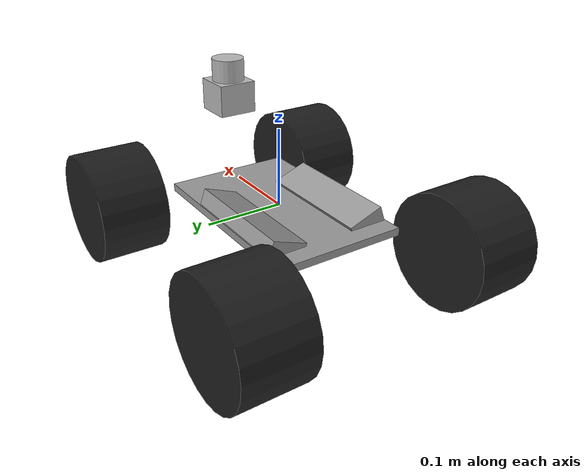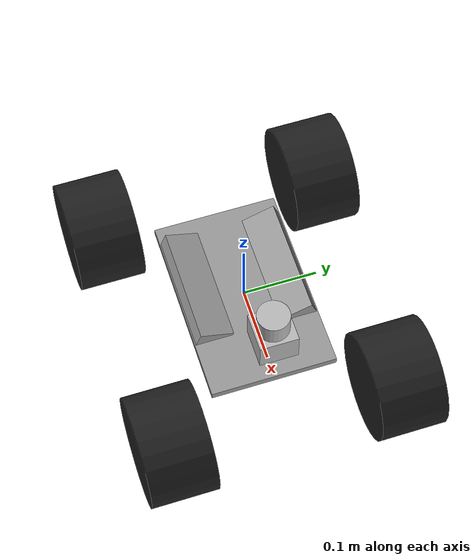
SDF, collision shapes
<?xml version='1.0'?>
<sdf version='1.6'>
  <model name='ackermann_vehicle'>
    <link name='base_link'>
      <pose frame=''>0 0 0 0 -0 0</pose>
      <inertial>
        <pose frame=''>-0.006634 0 -0.003536 0 -0 0</pose>
        <mass>3.795</mass>
        <inertia>
          <ixx>0.0121404</ixx>
          <ixy>0</ixy>
          <ixz>0.000102071</ixz>
          <iyy>0.0201814</iyy>
          <iyz>0</iyz>
          <izz>0.0301018</izz>
        </inertia>
      </inertial>
      <self_collide>0</self_collide>
      <kinematic>0</kinematic>
      <velocity_decay/>
      <visual name='base_link_visual'>
        <pose frame=''>0 0 0 0 -0 0</pose>
        <geometry>
          <box>
            <size>0.01 0.01 0.01</size>
          </box>
        </geometry>
        <material>
          <script>
            <name>Gazebo/Grey</name>
            <uri>file://media/materials/scripts/gazebo.material</uri>
          </script>
          <ambient>0.3 0.3 0.3 1</ambient>
          <diffuse>0.7 0.7 0.7 1</diffuse>
          <specular>0.01 0.01 0.01 1</specular>
          <emissive>0 0 0 1</emissive>
        </material>
        <transparency>0</transparency>
        <cast_shadows>1</cast_shadows>
      </visual>
      <visual name='base_link_fixed_joint_lump__chassis_visual_1'>
        <pose frame=''>0 0 -0.005 0 -0 0</pose>
        <geometry>
          <box>
            <size>0.258 0.168 0.01</size>
          </box>
        </geometry>
        <material>
          <script>
            <name>Gazebo/Grey</name>
            <uri>file://media/materials/scripts/gazebo.material</uri>
          </script>
          <ambient>0.3 0.3 0.3 1</ambient>
          <diffuse>0.7 0.7 0.7 1</diffuse>
          <specular>0.01 0.01 0.01 1</specular>
          <emissive>0 0 0 1</emissive>
        </material>
        <transparency>0</transparency>
        <cast_shadows>1</cast_shadows>
      </visual>
      <visual name='base_link_fixed_joint_lump__left_battery_visual_2'>
        <pose frame=''>-0.025 0.057319 0.00052 0.349066 -0 0</pose>
        <geometry>
          <box>
            <size>0.16 0.047 0.024</size>
          </box>
        </geometry>
        <material>
          <script>
            <name>Gazebo/Blue</name>
            <uri>file://media/materials/scripts/gazebo.material</uri>
          </script>
          <ambient>0 0 1 1</ambient>
          <diffuse>0 0 1 1</diffuse>
          <specular>0.1 0.1 0.1 1</specular>
          <emissive>0 0 0 1</emissive>
        </material>
        <transparency>0</transparency>
        <cast_shadows>1</cast_shadows>
      </visual>
      <visual name='base_link_fixed_joint_lump__right_battery_visual_3'>
        <pose frame=''>-0.025 -0.057319 0.00052 -0.349066 0 0</pose>
        <geometry>
          <box>
            <size>0.16 0.047 0.024</size>
          </box>
        </geometry>
        <material>
          <script>
            <name>Gazebo/Blue</name>
            <uri>file://media/materials/scripts/gazebo.material</uri>
          </script>
          <ambient>0 0 1 1</ambient>
          <diffuse>0 0 1 1</diffuse>
          <specular>0.1 0.1 0.1 1</specular>
          <emissive>0 0 0 1</emissive>
        </material>
        <transparency>0</transparency>
        <cast_shadows>1</cast_shadows>
      </visual>
      <collision name='base_link_fixed_joint_lump__chassis_collision'>
        <laser_retro>0</laser_retro>
        <max_contacts>10</max_contacts>
        <pose frame=''>0 0 -0.005 0 -0 0</pose>
        <geometry>
          <box>
            <size>0.258 0.168 0.01</size>
          </box>
        </geometry>
        <surface>
          <friction>
            <ode>
              <mu>1</mu>
              <mu2>1</mu2>
              <fdir1>0 0 0</fdir1>
              <slip1>0</slip1>
              <slip2>0</slip2>
            </ode>
            <torsional>
              <coefficient>1</coefficient>
              <patch_radius>0</patch_radius>
              <surface_radius>0</surface_radius>
              <use_patch_radius>1</use_patch_radius>
              <ode>
                <slip>0</slip>
              </ode>
            </torsional>
          </friction>
          <bounce>
            <restitution_coefficient>0</restitution_coefficient>
            <threshold>1e+06</threshold>
          </bounce>
          <contact>
            <collide_without_contact>0</collide_without_contact>
            <collide_without_contact_bitmask>1</collide_without_contact_bitmask>
            <collide_bitmask>1</collide_bitmask>
            <ode>
              <soft_cfm>0</soft_cfm>
              <soft_erp>0.2</soft_erp>
              <kp>1e+13</kp>
              <kd>1</kd>
              <max_vel>0.01</max_vel>
              <min_depth>0</min_depth>
            </ode>
            <bullet>
              <split_impulse>1</split_impulse>
              <split_impulse_penetration_threshold>-0.01</split_impulse_penetration_threshold>
              <soft_cfm>0</soft_cfm>
              <soft_erp>0.2</soft_erp>
              <kp>1e+13</kp>
              <kd>1</kd>
            </bullet>
          </contact>
        </surface>
      </collision>
      <collision name='base_link_fixed_joint_lump__left_battery_collision_1'>
        <laser_retro>0</laser_retro>
        <max_contacts>10</max_contacts>
        <pose frame=''>-0.025 0.057319 0.00052 0.349066 -0 0</pose>
        <geometry>
          <box>
            <size>0.16 0.047 0.024</size>
          </box>
        </geometry>
        <surface>
          <friction>
            <ode>
              <mu>1</mu>
              <mu2>1</mu2>
              <fdir1>0 0 0</fdir1>
              <slip1>0</slip1>
              <slip2>0</slip2>
            </ode>
            <torsional>
              <coefficient>1</coefficient>
              <patch_radius>0</patch_radius>
              <surface_radius>0</surface_radius>
              <use_patch_radius>1</use_patch_radius>
              <ode>
                <slip>0</slip>
              </ode>
            </torsional>
          </friction>
          <bounce>
            <restitution_coefficient>0</restitution_coefficient>
            <threshold>1e+06</threshold>
          </bounce>
          <contact>
            <collide_without_contact>0</collide_without_contact>
            <collide_without_contact_bitmask>1</collide_without_contact_bitmask>
            <collide_bitmask>1</collide_bitmask>
            <ode>
              <soft_cfm>0</soft_cfm>
              <soft_erp>0.2</soft_erp>
              <kp>1e+13</kp>
              <kd>1</kd>
              <max_vel>0.01</max_vel>
              <min_depth>0</min_depth>
            </ode>
            <bullet>
              <split_impulse>1</split_impulse>
              <split_impulse_penetration_threshold>-0.01</split_impulse_penetration_threshold>
              <soft_cfm>0</soft_cfm>
              <soft_erp>0.2</soft_erp>
              <kp>1e+13</kp>
              <kd>1</kd>
            </bullet>
          </contact>
        </surface>
      </collision>
      <collision name='base_link_fixed_joint_lump__right_battery_collision_2'>
        <laser_retro>0</laser_retro>
        <max_contacts>10</max_contacts>
        <pose frame=''>-0.025 -0.057319 0.00052 -0.349066 0 0</pose>
        <geometry>
          <box>
            <size>0.16 0.047 0.024</size>
          </box>
        </geometry>
        <surface>
          <friction>
            <ode>
              <mu>1</mu>
              <mu2>1</mu2>
              <fdir1>0 0 0</fdir1>
              <slip1>0</slip1>
              <slip2>0</slip2>
            </ode>
            <torsional>
              <coefficient>1</coefficient>
              <patch_radius>0</patch_radius>
              <surface_radius>0</surface_radius>
              <use_patch_radius>1</use_patch_radius>
              <ode>
                <slip>0</slip>
              </ode>
            </torsional>
          </friction>
          <bounce>
            <restitution_coefficient>0</restitution_coefficient>
            <threshold>1e+06</threshold>
          </bounce>
          <contact>
            <collide_without_contact>0</collide_without_contact>
            <collide_without_contact_bitmask>1</collide_without_contact_bitmask>
            <collide_bitmask>1</collide_bitmask>
            <ode>
              <soft_cfm>0</soft_cfm>
              <soft_erp>0.2</soft_erp>
              <kp>1e+13</kp>
              <kd>1</kd>
              <max_vel>0.01</max_vel>
              <min_depth>0</min_depth>
            </ode>
            <bullet>
              <split_impulse>1</split_impulse>
              <split_impulse_penetration_threshold>-0.01</split_impulse_penetration_threshold>
              <soft_cfm>0</soft_cfm>
              <soft_erp>0.2</soft_erp>
              <kp>1e+13</kp>
              <kd>1</kd>
            </bullet>
          </contact>
        </surface>
      </collision>
    </link>
    <link name='left_front_axle_carrier'>
      <pose frame=''>0.1675 0.1525 -0.0235 0 -0 0</pose>
      <inertial>
        <pose frame=''>0 0 0 0 -0 0</pose>
        <mass>0.001</mass>
        <inertia>
          <ixx>0.001</ixx>
          <ixy>0</ixy>
          <ixz>0</ixz>
          <iyy>0.001</iyy>
          <iyz>0</iyz>
          <izz>0.001</izz>
        </inertia>
      </inertial>
      <self_collide>0</self_collide>
      <kinematic>0</kinematic>
    </link>
    <link name='left_front_wheel'>
      <pose frame=''>0.1675 0.1525 -0.0235 1.5708 -0 0</pose>
      <inertial>
        <pose frame=''>0 0 0 0 -0 0</pose>
        <mass>0.29</mass>
        <inertia>
          <ixx>0.000746466</ixx>
          <ixy>0</ixy>
          <ixz>0</ixz>
          <iyy>0.000746466</iyy>
          <iyz>0</iyz>
          <izz>0.00111094</izz>
        </inertia>
      </inertial>
      <self_collide>0</self_collide>
      <kinematic>0</kinematic>
      <velocity_decay/>
      <visual name='left_front_wheel_visual'>
        <pose frame=''>0 0 0 0 -0 0</pose>
        <geometry>
          <cylinder>
            <length>0.0889</length>
            <radius>0.073025</radius>
          </cylinder>
        </geometry>
        <material>
          <script>
            <name>Gazebo/Black</name>
            <uri>file://media/materials/scripts/gazebo.material</uri>
          </script>
          <ambient>0 0 0 1</ambient>
          <diffuse>0 0 0 1</diffuse>
          <specular>0.1 0.1 0.1 1</specular>
          <emissive>0 0 0 1</emissive>
        </material>
        <transparency>0</transparency>
        <cast_shadows>1</cast_shadows>
      </visual>
      <collision name='left_front_wheel_collision'>
        <laser_retro>0</laser_retro>
        <max_contacts>10</max_contacts>
        <pose frame=''>0 0 0 0 -0 0</pose>
        <geometry>
          <cylinder>
            <radius>0.073025</radius>
            <length>0.0889</length>
          </cylinder>
        </geometry>
        <surface>
          <friction>
            <ode>
              <mu>1</mu>
              <mu2>1</mu2>
              <fdir1>0 0 0</fdir1>
              <slip1>0</slip1>
              <slip2>0</slip2>
            </ode>
            <torsional>
              <coefficient>1</coefficient>
              <patch_radius>0</patch_radius>
              <surface_radius>0</surface_radius>
              <use_patch_radius>1</use_patch_radius>
              <ode>
                <slip>0</slip>
              </ode>
            </torsional>
          </friction>
          <bounce>
            <restitution_coefficient>0</restitution_coefficient>
            <threshold>1e+06</threshold>
          </bounce>
          <contact>
            <collide_without_contact>0</collide_without_contact>
            <collide_without_contact_bitmask>1</collide_without_contact_bitmask>
            <collide_bitmask>1</collide_bitmask>
            <ode>
              <soft_cfm>0</soft_cfm>
              <soft_erp>0.2</soft_erp>
              <kp>1e+13</kp>
              <kd>1</kd>
              <max_vel>0.01</max_vel>
              <min_depth>0</min_depth>
            </ode>
            <bullet>
              <split_impulse>1</split_impulse>
              <split_impulse_penetration_threshold>-0.01</split_impulse_penetration_threshold>
              <soft_cfm>0</soft_cfm>
              <soft_erp>0.2</soft_erp>
              <kp>1e+13</kp>
              <kd>1</kd>
            </bullet>
          </contact>
        </surface>
      </collision>
    </link>
    <link name='left_rear_axle_carrier'>
      <pose frame=''>-0.1675 0.1525 -0.0235 0 -0 0</pose>
      <inertial>
        <pose frame=''>0 0 0 0 -0 0</pose>
        <mass>0.001</mass>
        <inertia>
          <ixx>0.001</ixx>
          <ixy>0</ixy>
          <ixz>0</ixz>
          <iyy>0.001</iyy>
          <iyz>0</iyz>
          <izz>0.001</izz>
        </inertia>
      </inertial>
      <self_collide>0</self_collide>
      <kinematic>0</kinematic>
    </link>
    <link name='left_rear_wheel'>
      <pose frame=''>-0.1675 0.1525 -0.0235 1.5708 -0 0</pose>
      <inertial>
        <pose frame=''>0 0 0 0 -0 0</pose>
        <mass>0.29</mass>
        <inertia>
          <ixx>0.000746466</ixx>
          <ixy>0</ixy>
          <ixz>0</ixz>
          <iyy>0.000746466</iyy>
          <iyz>0</iyz>
          <izz>0.00111094</izz>
        </inertia>
      </inertial>
      <self_collide>0</self_collide>
      <kinematic>0</kinematic>
      <velocity_decay/>
      <visual name='left_rear_wheel_visual'>
        <pose frame=''>0 0 0 0 -0 0</pose>
        <geometry>
          <cylinder>
            <length>0.0889</length>
            <radius>0.073025</radius>
          </cylinder>
        </geometry>
        <material>
          <script>
            <name>Gazebo/Black</name>
            <uri>file://media/materials/scripts/gazebo.material</uri>
          </script>
          <ambient>0 0 0 1</ambient>
          <diffuse>0 0 0 1</diffuse>
          <specular>0.1 0.1 0.1 1</specular>
          <emissive>0 0 0 1</emissive>
        </material>
        <transparency>0</transparency>
        <cast_shadows>1</cast_shadows>
      </visual>
      <collision name='left_rear_wheel_collision'>
        <laser_retro>0</laser_retro>
        <max_contacts>10</max_contacts>
        <pose frame=''>0 0 0 0 -0 0</pose>
        <geometry>
          <cylinder>
            <radius>0.073025</radius>
            <length>0.0889</length>
          </cylinder>
        </geometry>
        <surface>
          <friction>
            <ode>
              <mu>1</mu>
              <mu2>1</mu2>
              <fdir1>0 0 0</fdir1>
              <slip1>0</slip1>
              <slip2>0</slip2>
            </ode>
            <torsional>
              <coefficient>1</coefficient>
              <patch_radius>0</patch_radius>
              <surface_radius>0</surface_radius>
              <use_patch_radius>1</use_patch_radius>
              <ode>
                <slip>0</slip>
              </ode>
            </torsional>
          </friction>
          <bounce>
            <restitution_coefficient>0</restitution_coefficient>
            <threshold>1e+06</threshold>
          </bounce>
          <contact>
            <collide_without_contact>0</collide_without_contact>
            <collide_without_contact_bitmask>1</collide_without_contact_bitmask>
            <collide_bitmask>1</collide_bitmask>
            <ode>
              <soft_cfm>0</soft_cfm>
              <soft_erp>0.2</soft_erp>
              <kp>1e+13</kp>
              <kd>1</kd>
              <max_vel>0.01</max_vel>
              <min_depth>0</min_depth>
            </ode>
            <bullet>
              <split_impulse>1</split_impulse>
              <split_impulse_penetration_threshold>-0.01</split_impulse_penetration_threshold>
              <soft_cfm>0</soft_cfm>
              <soft_erp>0.2</soft_erp>
              <kp>1e+13</kp>
              <kd>1</kd>
            </bullet>
          </contact>
        </surface>
      </collision>
    </link>
    <link name='left_steering_link'>
      <pose frame=''>0.1675 0.1525 -0.0235 0 -0 0</pose>
      <inertial>
        <pose frame=''>0 0 0 0 -0 0</pose>
        <mass>0.001</mass>
        <inertia>
          <ixx>0.001</ixx>
          <ixy>0</ixy>
          <ixz>0</ixz>
          <iyy>0.001</iyy>
          <iyz>0</iyz>
          <izz>0.001</izz>
        </inertia>
      </inertial>
      <self_collide>0</self_collide>
      <kinematic>0</kinematic>
    </link>
    <link name='right_front_axle_carrier'>
      <pose frame=''>0.1675 -0.1525 -0.0235 0 -0 0</pose>
      <inertial>
        <pose frame=''>0 0 0 0 -0 0</pose>
        <mass>0.001</mass>
        <inertia>
          <ixx>0.001</ixx>
          <ixy>0</ixy>
          <ixz>0</ixz>
          <iyy>0.001</iyy>
          <iyz>0</iyz>
          <izz>0.001</izz>
        </inertia>
      </inertial>
      <self_collide>0</self_collide>
      <kinematic>0</kinematic>
    </link>
    <link name='right_front_wheel'>
      <pose frame=''>0.1675 -0.1525 -0.0235 1.5708 -0 0</pose>
      <inertial>
        <pose frame=''>0 0 0 0 -0 0</pose>
        <mass>0.29</mass>
        <inertia>
          <ixx>0.000746466</ixx>
          <ixy>0</ixy>
          <ixz>0</ixz>
          <iyy>0.000746466</iyy>
          <iyz>0</iyz>
          <izz>0.00111094</izz>
        </inertia>
      </inertial>
      <self_collide>0</self_collide>
      <kinematic>0</kinematic>
      <velocity_decay/>
      <visual name='right_front_wheel_visual'>
        <pose frame=''>0 0 0 0 -0 0</pose>
        <geometry>
          <cylinder>
            <length>0.0889</length>
            <radius>0.073025</radius>
          </cylinder>
        </geometry>
        <material>
          <script>
            <name>Gazebo/Black</name>
            <uri>file://media/materials/scripts/gazebo.material</uri>
          </script>
          <ambient>0 0 0 1</ambient>
          <diffuse>0 0 0 1</diffuse>
          <specular>0.1 0.1 0.1 1</specular>
          <emissive>0 0 0 1</emissive>
        </material>
        <transparency>0</transparency>
        <cast_shadows>1</cast_shadows>
      </visual>
      <collision name='right_front_wheel_collision'>
        <laser_retro>0</laser_retro>
        <max_contacts>10</max_contacts>
        <pose frame=''>0 0 0 0 -0 0</pose>
        <geometry>
          <cylinder>
            <radius>0.073025</radius>
            <length>0.0889</length>
          </cylinder>
        </geometry>
        <surface>
          <friction>
            <ode>
              <mu>1</mu>
              <mu2>1</mu2>
              <fdir1>0 0 0</fdir1>
              <slip1>0</slip1>
              <slip2>0</slip2>
            </ode>
            <torsional>
              <coefficient>1</coefficient>
              <patch_radius>0</patch_radius>
              <surface_radius>0</surface_radius>
              <use_patch_radius>1</use_patch_radius>
              <ode>
                <slip>0</slip>
              </ode>
            </torsional>
          </friction>
          <bounce>
            <restitution_coefficient>0</restitution_coefficient>
            <threshold>1e+06</threshold>
          </bounce>
          <contact>
            <collide_without_contact>0</collide_without_contact>
            <collide_without_contact_bitmask>1</collide_without_contact_bitmask>
            <collide_bitmask>1</collide_bitmask>
            <ode>
              <soft_cfm>0</soft_cfm>
              <soft_erp>0.2</soft_erp>
              <kp>1e+13</kp>
              <kd>1</kd>
              <max_vel>0.01</max_vel>
              <min_depth>0</min_depth>
            </ode>
            <bullet>
              <split_impulse>1</split_impulse>
              <split_impulse_penetration_threshold>-0.01</split_impulse_penetration_threshold>
              <soft_cfm>0</soft_cfm>
              <soft_erp>0.2</soft_erp>
              <kp>1e+13</kp>
              <kd>1</kd>
            </bullet>
          </contact>
        </surface>
      </collision>
    </link>
    <link name='right_rear_axle_carrier'>
      <pose frame=''>-0.1675 -0.1525 -0.0235 0 -0 0</pose>
      <inertial>
        <pose frame=''>0 0 0 0 -0 0</pose>
        <mass>0.001</mass>
        <inertia>
          <ixx>0.001</ixx>
          <ixy>0</ixy>
          <ixz>0</ixz>
          <iyy>0.001</iyy>
          <iyz>0</iyz>
          <izz>0.001</izz>
        </inertia>
      </inertial>
      <self_collide>0</self_collide>
      <kinematic>0</kinematic>
    </link>
    <link name='right_rear_wheel'>
      <pose frame=''>-0.1675 -0.1525 -0.0235 1.5708 -0 0</pose>
      <inertial>
        <pose frame=''>0 0 0 0 -0 0</pose>
        <mass>0.29</mass>
        <inertia>
          <ixx>0.000746466</ixx>
          <ixy>0</ixy>
          <ixz>0</ixz>
          <iyy>0.000746466</iyy>
          <iyz>0</iyz>
          <izz>0.00111094</izz>
        </inertia>
      </inertial>
      <self_collide>0</self_collide>
      <kinematic>0</kinematic>
      <velocity_decay/>
      <visual name='right_rear_wheel_visual'>
        <pose frame=''>0 0 0 0 -0 0</pose>
        <geometry>
          <cylinder>
            <length>0.0889</length>
            <radius>0.073025</radius>
          </cylinder>
        </geometry>
        <material>
          <script>
            <name>Gazebo/Black</name>
            <uri>file://media/materials/scripts/gazebo.material</uri>
          </script>
          <ambient>0 0 0 1</ambient>
          <diffuse>0 0 0 1</diffuse>
          <specular>0.1 0.1 0.1 1</specular>
          <emissive>0 0 0 1</emissive>
        </material>
        <transparency>0</transparency>
        <cast_shadows>1</cast_shadows>
      </visual>
      <collision name='right_rear_wheel_collision'>
        <laser_retro>0</laser_retro>
        <max_contacts>10</max_contacts>
        <pose frame=''>0 0 0 0 -0 0</pose>
        <geometry>
          <cylinder>
            <radius>0.073025</radius>
            <length>0.0889</length>
          </cylinder>
        </geometry>
        <surface>
          <friction>
            <ode>
              <mu>1</mu>
              <mu2>1</mu2>
              <fdir1>0 0 0</fdir1>
              <slip1>0</slip1>
              <slip2>0</slip2>
            </ode>
            <torsional>
              <coefficient>1</coefficient>
              <patch_radius>0</patch_radius>
              <surface_radius>0</surface_radius>
              <use_patch_radius>1</use_patch_radius>
              <ode>
                <slip>0</slip>
              </ode>
            </torsional>
          </friction>
          <bounce>
            <restitution_coefficient>0</restitution_coefficient>
            <threshold>1e+06</threshold>
          </bounce>
          <contact>
            <collide_without_contact>0</collide_without_contact>
            <collide_without_contact_bitmask>1</collide_without_contact_bitmask>
            <collide_bitmask>1</collide_bitmask>
            <ode>
              <soft_cfm>0</soft_cfm>
              <soft_erp>0.2</soft_erp>
              <kp>1e+13</kp>
              <kd>1</kd>
              <max_vel>0.01</max_vel>
              <min_depth>0</min_depth>
            </ode>
            <bullet>
              <split_impulse>1</split_impulse>
              <split_impulse_penetration_threshold>-0.01</split_impulse_penetration_threshold>
              <soft_cfm>0</soft_cfm>
              <soft_erp>0.2</soft_erp>
              <kp>1e+13</kp>
              <kd>1</kd>
            </bullet>
          </contact>
        </surface>
      </collision>
    </link>
    <link name='right_steering_link'>
      <pose frame=''>0.1675 -0.1525 -0.0235 0 -0 0</pose>
      <inertial>
        <pose frame=''>0 0 0 0 -0 0</pose>
        <mass>0.001</mass>
        <inertia>
          <ixx>0.001</ixx>
          <ixy>0</ixy>
          <ixz>0</ixz>
          <iyy>0.001</iyy>
          <iyz>0</iyz>
          <izz>0.001</izz>
        </inertia>
      </inertial>
      <self_collide>0</self_collide>
      <kinematic>0</kinematic>
    </link>
    <model name='hokuyo'>
      <pose frame=''>0.126535 -0.003161 0.12364 0 -0 0</pose>
      <link name='link'>
        <inertial>
          <mass>0.1</mass>
        </inertial>
        <visual name='visual'>
          <geometry>
            <mesh>
              <uri>model://hokuyo/meshes/hokuyo.dae</uri>
            </mesh>
          </geometry>
        </visual>
        <collision name='collision-base'>
          <pose frame=''>0 0 -0.0145 0 -0 0</pose>
          <geometry>
            <box>
              <size>0.05 0.05 0.041</size>
            </box>
          </geometry>
        </collision>
        <collision name='collision-top'>
          <pose frame=''>0 0 0.0205 0 -0 0</pose>
          <geometry>
            <cylinder>
              <radius>0.021</radius>
              <length>0.029</length>
            </cylinder>
          </geometry>
        </collision>
        <sensor name='laser' type='ray'>
          <pose frame=''>0.01 0 0.0175 0 -0 0</pose>
          <ray>
            <scan>
              <horizontal>
                <samples>640</samples>
                <resolution>1</resolution>
                <min_angle>-2.26889</min_angle>
                <max_angle>2.2689</max_angle>
              </horizontal>
            </scan>
            <range>
              <min>0.08</min>
              <max>10</max>
              <resolution>0.01</resolution>
            </range>
          </ray>
          <plugin name='laser' filename='libRayPlugin.so'/>
          <always_on>1</always_on>
          <update_rate>30</update_rate>
          <visualize>1</visualize>
        </sensor>
      </link>
    </model>
    <joint name='base_link_JOINT_0' type='fixed'>
      <parent>base_link</parent>
      <child>hokuyo::link</child>
      <pose frame=''>0 0 0 0 -0 0</pose>
      <physics>
        <ode>
          <limit>
            <cfm>0</cfm>
            <erp>0.2</erp>
          </limit>
          <suspension>
            <cfm>0</cfm>
            <erp>0.2</erp>
          </suspension>
        </ode>
      </physics>
    </joint>
    <joint name='left_front_axle' type='revolute'>
      <parent>left_front_axle_carrier</parent>
      <child>left_front_wheel</child>
      <pose frame=''>0 0 0 0 -0 0</pose>
      <axis>
        <xyz>0 1 0</xyz>
        <use_parent_model_frame>1</use_parent_model_frame>
        <limit>
          <lower>-1e+16</lower>
          <upper>1e+16</upper>
          <effort>-1</effort>
          <velocity>-1</velocity>
        </limit>
        <dynamics>
          <spring_reference>0</spring_reference>
          <spring_stiffness>0</spring_stiffness>
          <damping>0</damping>
          <friction>0</friction>
        </dynamics>
      </axis>
      <physics>
        <ode>
          <limit>
            <cfm>0</cfm>
            <erp>0.2</erp>
          </limit>
          <suspension>
            <cfm>0</cfm>
            <erp>0.2</erp>
          </suspension>
        </ode>
      </physics>
    </joint>
    <joint name='left_front_shock' type='prismatic'>
      <parent>base_link</parent>
      <child>left_steering_link</child>
      <pose frame=''>0 0 0 0 -0 0</pose>
      <axis>
        <xyz>0 0 -1</xyz>
        <use_parent_model_frame>1</use_parent_model_frame>
        <limit>
          <lower>-0.042</lower>
          <upper>0.042</upper>
          <effort>12.5106</effort>
          <velocity>1000</velocity>
        </limit>
        <dynamics>
          <spring_reference>0</spring_reference>
          <spring_stiffness>0</spring_stiffness>
          <damping>0</damping>
          <friction>0</friction>
        </dynamics>
      </axis>
      <physics>
        <ode>
          <limit>
            <cfm>0</cfm>
            <erp>0.2</erp>
          </limit>
          <suspension>
            <cfm>0</cfm>
            <erp>0.2</erp>
          </suspension>
        </ode>
      </physics>
    </joint>
    <joint name='left_rear_axle' type='revolute'>
      <parent>left_rear_axle_carrier</parent>
      <child>left_rear_wheel</child>
      <pose frame=''>0 0 0 0 -0 0</pose>
      <axis>
        <xyz>0 1 0</xyz>
        <use_parent_model_frame>1</use_parent_model_frame>
        <limit>
          <lower>-1e+16</lower>
          <upper>1e+16</upper>
          <effort>-1</effort>
          <velocity>-1</velocity>
        </limit>
        <dynamics>
          <spring_reference>0</spring_reference>
          <spring_stiffness>0</spring_stiffness>
          <damping>0</damping>
          <friction>0</friction>
        </dynamics>
      </axis>
      <physics>
        <ode>
          <limit>
            <cfm>0</cfm>
            <erp>0.2</erp>
          </limit>
          <suspension>
            <cfm>0</cfm>
            <erp>0.2</erp>
          </suspension>
        </ode>
      </physics>
    </joint>
    <joint name='left_rear_shock' type='prismatic'>
      <parent>base_link</parent>
      <child>left_rear_axle_carrier</child>
      <pose frame=''>0 0 0 0 -0 0</pose>
      <axis>
        <xyz>0 0 -1</xyz>
        <use_parent_model_frame>1</use_parent_model_frame>
        <limit>
          <lower>-0.042</lower>
          <upper>0.042</upper>
          <effort>12.5106</effort>
          <velocity>1000</velocity>
        </limit>
        <dynamics>
          <spring_reference>0</spring_reference>
          <spring_stiffness>0</spring_stiffness>
          <damping>0</damping>
          <friction>0</friction>
        </dynamics>
      </axis>
      <physics>
        <ode>
          <limit>
            <cfm>0</cfm>
            <erp>0.2</erp>
          </limit>
          <suspension>
            <cfm>0</cfm>
            <erp>0.2</erp>
          </suspension>
        </ode>
      </physics>
    </joint>
    <joint name='left_steering_joint' type='revolute'>
      <parent>left_steering_link</parent>
      <child>left_front_axle_carrier</child>
      <pose frame=''>0 0 0 0 -0 0</pose>
      <axis>
        <xyz>0 0 1</xyz>
        <use_parent_model_frame>1</use_parent_model_frame>
        <limit>
          <lower>-0.785398</lower>
          <upper>0.785398</upper>
          <effort>0.5649</effort>
          <velocity>4.553</velocity>
        </limit>
        <dynamics>
          <spring_reference>0</spring_reference>
          <spring_stiffness>0</spring_stiffness>
          <damping>0</damping>
          <friction>0</friction>
        </dynamics>
      </axis>
      <physics>
        <ode>
          <limit>
            <cfm>0</cfm>
            <erp>0.2</erp>
          </limit>
          <suspension>
            <cfm>0</cfm>
            <erp>0.2</erp>
          </suspension>
        </ode>
      </physics>
    </joint>
    <joint name='right_front_axle' type='revolute'>
      <parent>right_front_axle_carrier</parent>
      <child>right_front_wheel</child>
      <pose frame=''>0 0 0 0 -0 0</pose>
      <axis>
        <xyz>0 1 0</xyz>
        <use_parent_model_frame>1</use_parent_model_frame>
        <limit>
          <lower>-1e+16</lower>
          <upper>1e+16</upper>
          <effort>-1</effort>
          <velocity>-1</velocity>
        </limit>
        <dynamics>
          <spring_reference>0</spring_reference>
          <spring_stiffness>0</spring_stiffness>
          <damping>0</damping>
          <friction>0</friction>
        </dynamics>
      </axis>
      <physics>
        <ode>
          <limit>
            <cfm>0</cfm>
            <erp>0.2</erp>
          </limit>
          <suspension>
            <cfm>0</cfm>
            <erp>0.2</erp>
          </suspension>
        </ode>
      </physics>
    </joint>
    <joint name='right_front_shock' type='prismatic'>
      <parent>base_link</parent>
      <child>right_steering_link</child>
      <pose frame=''>0 0 0 0 -0 0</pose>
      <axis>
        <xyz>0 0 -1</xyz>
        <use_parent_model_frame>1</use_parent_model_frame>
        <limit>
          <lower>-0.042</lower>
          <upper>0.042</upper>
          <effort>12.5106</effort>
          <velocity>1000</velocity>
        </limit>
        <dynamics>
          <spring_reference>0</spring_reference>
          <spring_stiffness>0</spring_stiffness>
          <damping>0</damping>
          <friction>0</friction>
        </dynamics>
      </axis>
      <physics>
        <ode>
          <limit>
            <cfm>0</cfm>
            <erp>0.2</erp>
          </limit>
          <suspension>
            <cfm>0</cfm>
            <erp>0.2</erp>
          </suspension>
        </ode>
      </physics>
    </joint>
    <joint name='right_rear_axle' type='revolute'>
      <parent>right_rear_axle_carrier</parent>
      <child>right_rear_wheel</child>
      <pose frame=''>0 0 0 0 -0 0</pose>
      <axis>
        <xyz>0 1 0</xyz>
        <use_parent_model_frame>1</use_parent_model_frame>
        <limit>
          <lower>-1e+16</lower>
          <upper>1e+16</upper>
          <effort>-1</effort>
          <velocity>-1</velocity>
        </limit>
        <dynamics>
          <spring_reference>0</spring_reference>
          <spring_stiffness>0</spring_stiffness>
          <damping>0</damping>
          <friction>0</friction>
        </dynamics>
      </axis>
      <physics>
        <ode>
          <limit>
            <cfm>0</cfm>
            <erp>0.2</erp>
          </limit>
          <suspension>
            <cfm>0</cfm>
            <erp>0.2</erp>
          </suspension>
        </ode>
      </physics>
    </joint>
    <joint name='right_rear_shock' type='prismatic'>
      <parent>base_link</parent>
      <child>right_rear_axle_carrier</child>
      <pose frame=''>0 0 0 0 -0 0</pose>
      <axis>
        <xyz>0 0 -1</xyz>
        <use_parent_model_frame>1</use_parent_model_frame>
        <limit>
          <lower>-0.042</lower>
          <upper>0.042</upper>
          <effort>12.5106</effort>
          <velocity>1000</velocity>
        </limit>
        <dynamics>
          <spring_reference>0</spring_reference>
          <spring_stiffness>0</spring_stiffness>
          <damping>0</damping>
          <friction>0</friction>
        </dynamics>
      </axis>
      <physics>
        <ode>
          <limit>
            <cfm>0</cfm>
            <erp>0.2</erp>
          </limit>
          <suspension>
            <cfm>0</cfm>
            <erp>0.2</erp>
          </suspension>
        </ode>
      </physics>
    </joint>
    <joint name='right_steering_joint' type='revolute'>
      <parent>right_steering_link</parent>
      <child>right_front_axle_carrier</child>
      <pose frame=''>0 0 0 0 -0 0</pose>
      <axis>
        <xyz>0 0 1</xyz>
        <use_parent_model_frame>1</use_parent_model_frame>
        <limit>
          <lower>-0.785398</lower>
          <upper>0.785398</upper>
          <effort>0.5649</effort>
          <velocity>4.553</velocity>
        </limit>
        <dynamics>
          <spring_reference>0</spring_reference>
          <spring_stiffness>0</spring_stiffness>
          <damping>0</damping>
          <friction>0</friction>
        </dynamics>
      </axis>
      <physics>
        <ode>
          <limit>
            <cfm>0</cfm>
            <erp>0.2</erp>
          </limit>
          <suspension>
            <cfm>0</cfm>
            <erp>0.2</erp>
          </suspension>
        </ode>
      </physics>
    </joint>
    <static>0</static>
    <allow_auto_disable>1</allow_auto_disable>
    <plugin name='gazebo_ros_control' filename='libgazebo_ros_control.so'>
      <robotNamespace>/</robotNamespace>
    </plugin>
  </model>
</sdf>
